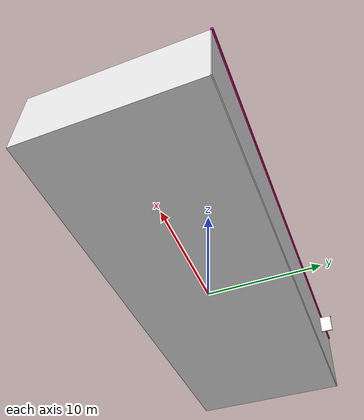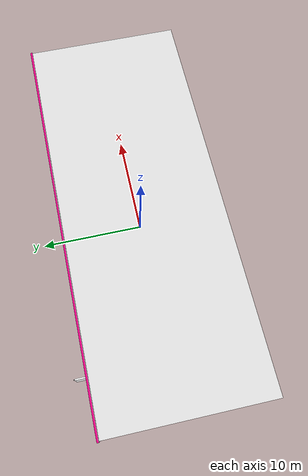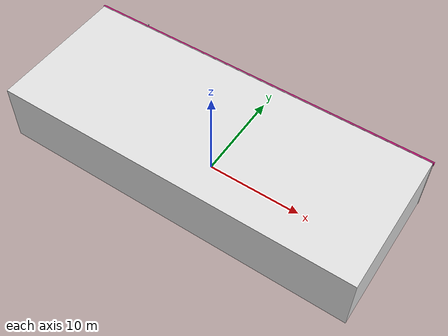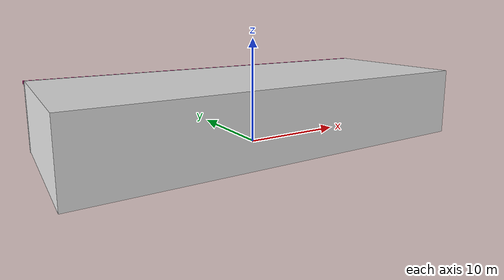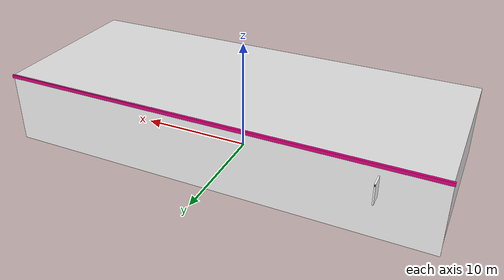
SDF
<?xml version="1.0" ?>
<sdf version="1.8">
  <model name="poya_store">
    <static>true</static>
    <link name="poya_link">

      <!-- Collision -->
      <collision name="poya_main_col">
        <pose>0 0 3.25 0 0 0</pose>
        <geometry>
          <box><size>38.0 15.0 6.5</size></box>
        </geometry>
      </collision>

      <!-- Main Building Box (Neutral off-white rear and sides) -->
      <visual name="poya_body_vis">
        <pose>0 0 3.25 0 0 0</pose>
        <geometry>
          <box><size>37.9 14.9 6.48</size></box>
        </geometry>
        <material>
          <ambient>0.82 0.82 0.82 1</ambient>
          <diffuse>0.88 0.88 0.88 1</diffuse>
          <pbr>
            <metal>
              <roughness>0.6</roughness>
              <metalness>0.05</metalness>
            </metal>
          </pbr>
        </material>
      </visual>

      <!-- Front Photo-Real Facade (X: 38m, Z: 6.5m) -->
      <visual name="poya_facade_vis">
        <pose>0 7.46 3.25 0 0 0</pose>
        <geometry>
          <box><size>38.0 0.08 6.5</size></box>
        </geometry>
        <material>
          <diffuse>1 1 1 1</diffuse>
          <pbr>
            <metal>
              <albedo_map>model://poya_store/materials/textures/poya_facade.png</albedo_map>
              <roughness>0.35</roughness>
              <metalness>0.1</metalness>
            </metal>
          </pbr>
        </material>
      </visual>

      <!-- Magenta Fascia Top Border Trim -->
      <visual name="poya_fascia_trim">
        <pose>0 7.52 6.35 0 0 0</pose>
        <geometry>
          <box><size>38.1 0.2 0.3</size></box>
        </geometry>
        <material>
          <ambient>0.85 0.0 0.45 1</ambient>
          <diffuse>0.92 0.0 0.52 1</diffuse>
        </material>
      </visual>

      <!-- Protruding Hanging Sign (側懸垂直粉紅招牌) -->
      <visual name="poya_sign_arm">
        <pose>-14.0 8.0 5.4 0 0 0</pose>
        <geometry>
          <box><size>0.08 1.4 0.08</size></box>
        </geometry>
        <material>
          <ambient>0.2 0.2 0.2 1</ambient>
          <diffuse>0.25 0.25 0.25 1</diffuse>
        </material>
      </visual>
      <visual name="poya_protruding_sign">
        <pose>-14.0 8.0 4.6 0 0 0</pose>
        <geometry>
          <box><size>0.12 1.2 1.8</size></box>
        </geometry>
        <material>
          <diffuse>1 1 1 1</diffuse>
          <pbr>
            <metal>
              <albedo_map>model://poya_store/materials/textures/poya_protruding_sign.png</albedo_map>
              <roughness>0.3</roughness>
              <metalness>0.1</metalness>
            </metal>
          </pbr>
        </material>
      </visual>

    </link>
  </model>
</sdf>
